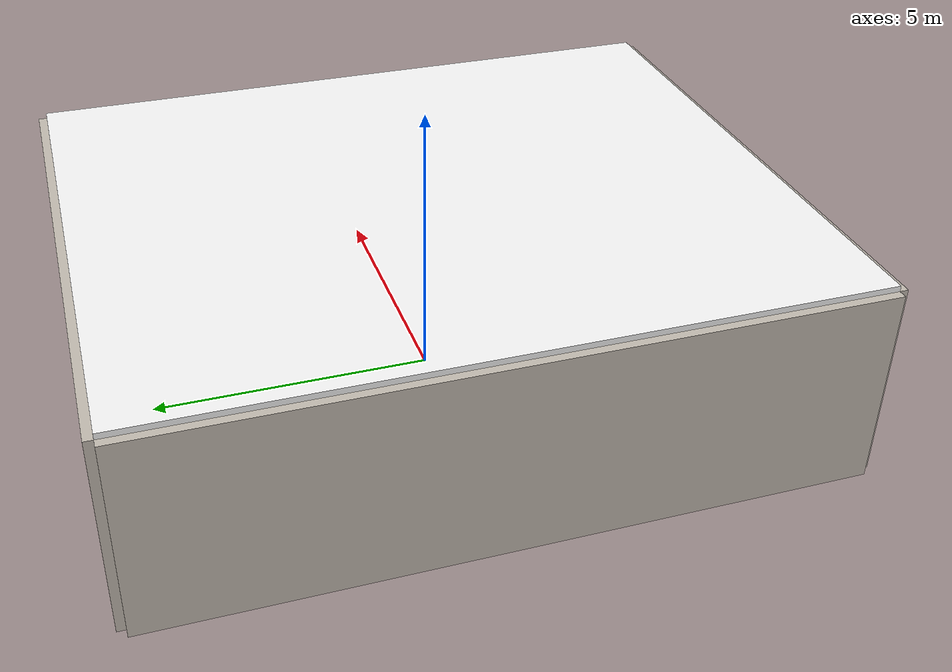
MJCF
<mujoco model="test_room2">
  <compiler angle="radian"/>
  <visual>
  <headlight diffuse="0.6 0.6 0.6" ambient="0.3 0.3 0.3" specular="0 0 0"/>
  <rgba haze="0.15 0.25 0.35 1"/>
</visual>

<asset>
  <texture name="marble_blue_white" type="2d" file="../textures/marble_blue_white.png"/>
  <material name="floor_material" texture="marble_blue_white" texrepeat="8 8" specular="0.3" shininess="0.2"/>
  <texture name="concrete" type="2d" file="../textures/concrete.png"/>
  <material name="wall_material" texture="concrete" texrepeat="4 4" specular="0.05" shininess="0.01"/>
</asset>

<worldbody>
  <geom name="floor" type="plane" size="5.0 6.0 0.1" pos="0 0 0" material="floor_material" friction="1.0 0.05 0.01"/>
  <geom name="wall_north" type="box" size="5.0 0.15 1.75" pos="0 6.0 1.75" material="wall_material"/>
  <geom name="wall_south" type="box" size="5.0 0.15 1.75" pos="0 -6.0 1.75" material="wall_material"/>
  <geom name="wall_east" type="box" size="0.15 6.0 1.75" pos="5.0 0 1.75" material="wall_material"/>
  <geom name="wall_west" type="box" size="0.15 6.0 1.75" pos="-5.0 0 1.75" material="wall_material"/>
  <geom name="ceiling" type="box" size="5.0 6.0 0.1" pos="0 0 3.5" rgba="0.95 0.95 0.95 1"/>
</worldbody>
</mujoco>
